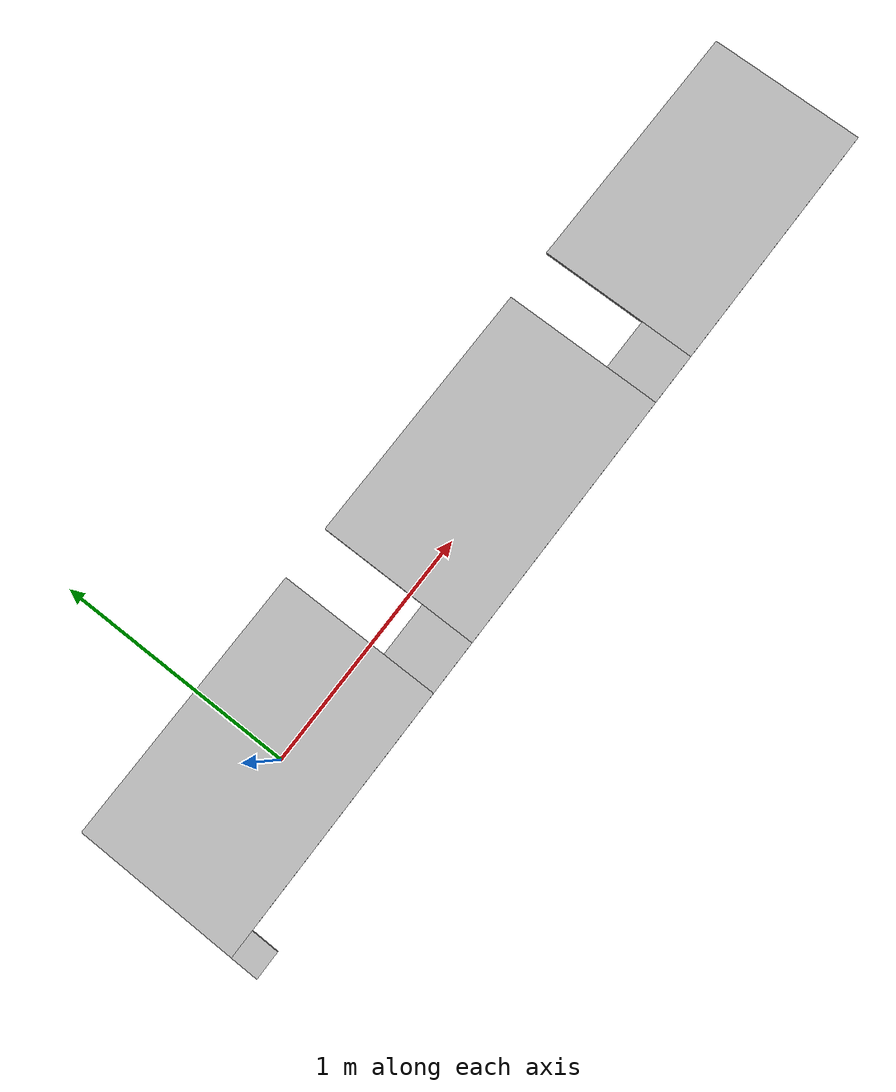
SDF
<?xml version='1.0'?>
<sdf version='1.7'>
    <model name="solarpanel">
      <static>true</static>
      <!-- inclined plane -->
      <!-- flat plane -->
      <pose>0 0 0.6 0 0 0</pose>
      <link name="charging_base">
        <pose>-0.45 -0.35 0 0 0 0</pose>
         <collision name="panel_collision">
            <surface>
            <contact>
              <collide_bitmask>65535</collide_bitmask>
              <ode/>
            </contact>
            <friction>
              <ode>
                <mu>100</mu>
                <mu2>100</mu2>
              </ode>
              <torsional>
                <ode/>
              </torsional>
            </friction>
            <bounce/>
          </surface>
          <geometry>
            <box>
              <size>0.1 0.1 0.01</size>
            </box>
          </geometry>
        </collision>
        <visual name="panel_visual">
          <geometry>
            <box>
              <size>0.1 0.1 0.01</size>
            </box>
          </geometry>
        </visual>
      </link>
      <link name="panel1">
        <collision name="panel_collision">
                    <surface>
            <contact>
              <collide_bitmask>65535</collide_bitmask>
              <ode/>
            </contact>
            <friction>
              <ode>
                <mu>100</mu>
                <mu2>100</mu2>
              </ode>
              <torsional>
                <ode/>
              </torsional>
            </friction>
            <bounce/>
          </surface>
          <geometry>
            <box>
              <size>1 0.6 0.01</size>
            </box>
          </geometry>
        </collision>
        <visual name="panel_visual">
          <geometry>
            <box>
              <size>1 0.6 0.01</size>
            </box>
          </geometry>
        </visual>
      </link>
      <link name="bridge1">
      <pose>0.60 -0.2 0 0 0 0</pose>
         <collision name="panel_collision">
            <surface>
            <contact>
              <collide_bitmask>65535</collide_bitmask>
              <ode/>
            </contact>
            <friction>
              <ode>
                <mu>100</mu>
                <mu2>100</mu2>
              </ode>
              <torsional>
                <ode/>
              </torsional>
            </friction>
            <bounce/>
          </surface>
          <geometry>
            <box>
              <size>0.2 0.2 0.01</size>
            </box>
          </geometry>
        </collision>
        <visual name="panel_visual">
          <geometry>
            <box>
              <size>0.2 0.2 0.01</size>
            </box>
          </geometry>
        </visual>
      </link>

      <link name="panel2">
        <pose>1.2 0 0 0 0 0</pose>
        <collision name="panel_collision">
                    <surface>
            <contact>
              <collide_bitmask>65535</collide_bitmask>
              <ode/>
            </contact>
            <friction>
              <ode>
                <mu>100</mu>
                <mu2>100</mu2>
              </ode>
              <torsional>
                <ode/>
              </torsional>
            </friction>
            <bounce/>
          </surface>
          <geometry>
            <box>
              <size>1 0.6 0.01</size>
            </box>
          </geometry>
        </collision>
        <visual name="panel_visual">
          <geometry>
            <box>
              <size>1 0.6 0.01</size>
            </box>
          </geometry>
        </visual>
      </link>
      <link name="bridge2">
      <pose>1.8 -0.2 0 0 0 0</pose>
         <collision name="panel_collision">
            <surface>
            <contact>
              <collide_bitmask>65535</collide_bitmask>
              <ode/>
            </contact>
            <friction>
              <ode>
                <mu>100</mu>
                <mu2>100</mu2>
              </ode>
              <torsional>
                <ode/>
              </torsional>
            </friction>
            <bounce/>
          </surface>
          <geometry>
            <box>
              <size>0.2 0.2 0.01</size>
            </box>
          </geometry>
        </collision>
        <visual name="panel_visual">
          <geometry>
            <box>
              <size>0.2 0.2 0.01</size>
            </box>
          </geometry>
        </visual>
      </link>

      <link name="panel3">
        <pose>2.4 0 0 0 0 0</pose>
        <collision name="panel_collision">
                    <surface>
            <contact>
              <collide_bitmask>65535</collide_bitmask>
              <ode/>
            </contact>
            <friction>
              <ode>
                <mu>100</mu>
                <mu2>100</mu2>
              </ode>
              <torsional>
                <ode/>
              </torsional>
            </friction>
            <bounce/>
          </surface>
          <geometry>
            <box>
              <size>1 0.6 0.01</size>
            </box>
          </geometry>
        </collision>
        <visual name="panel_visual">
          <geometry>
            <box>
              <size>1 0.6 0.01</size>
            </box>
          </geometry>
        </visual>
      </link>
    </model>
</sdf>
